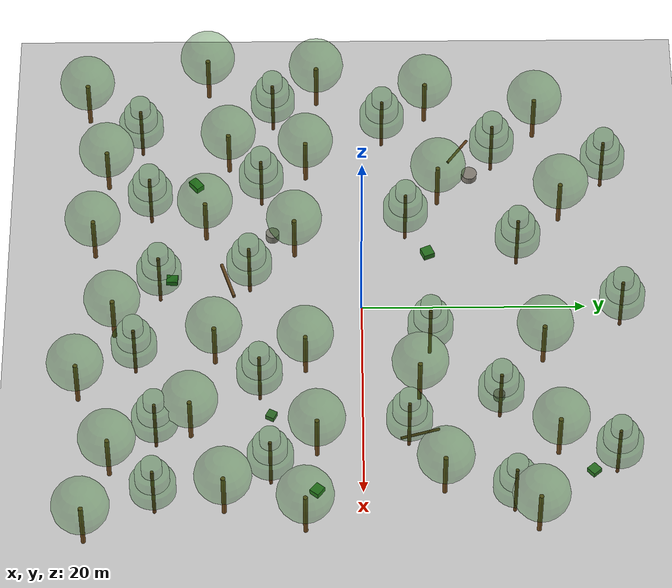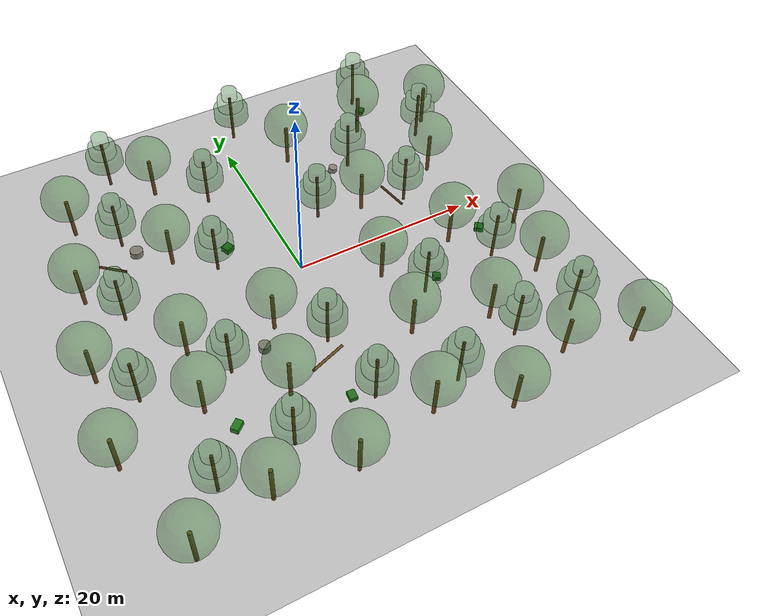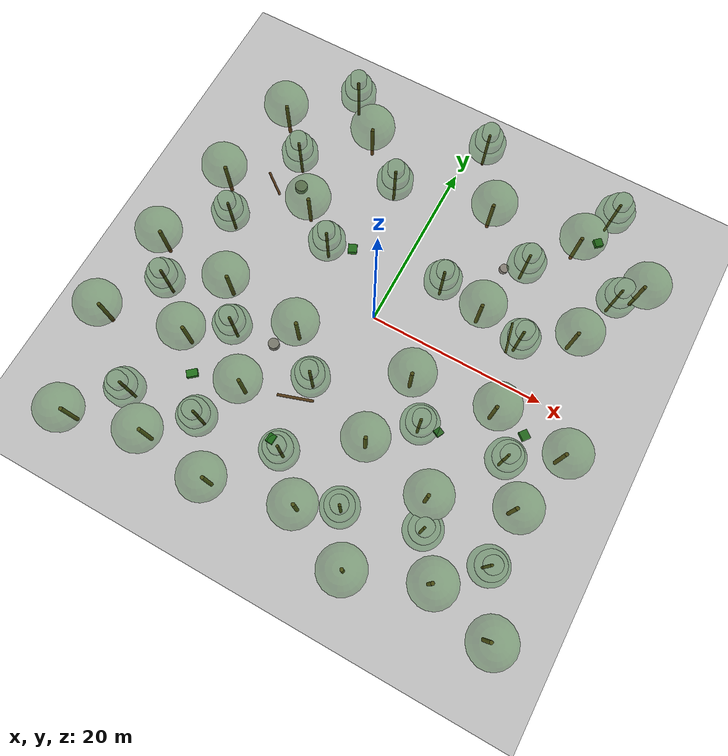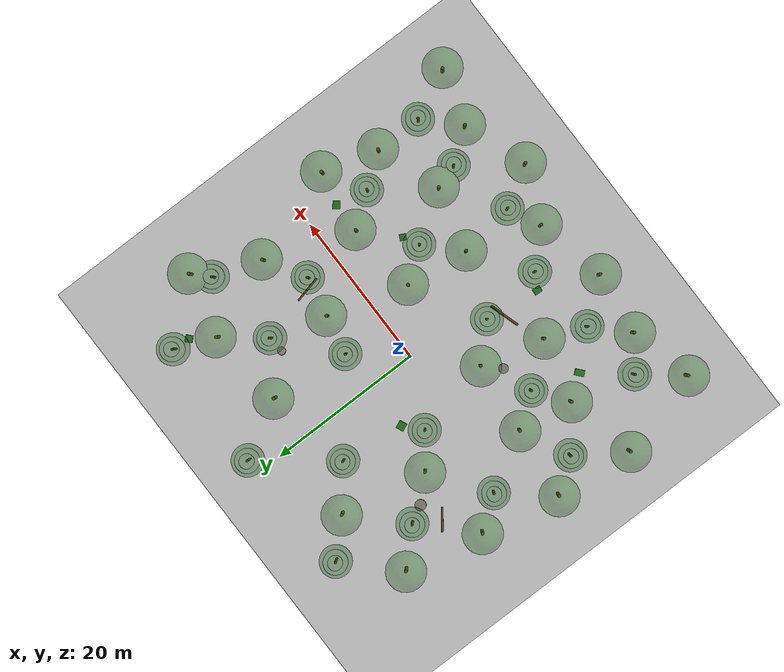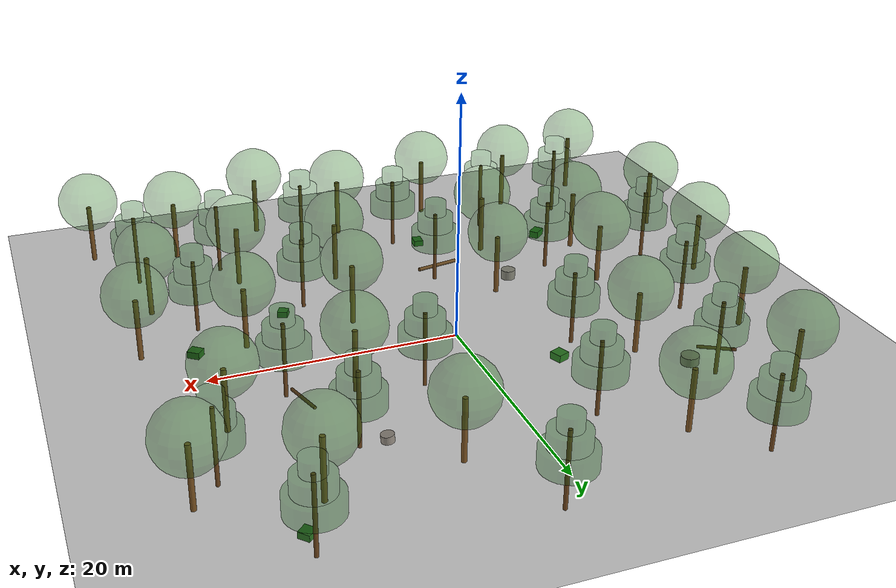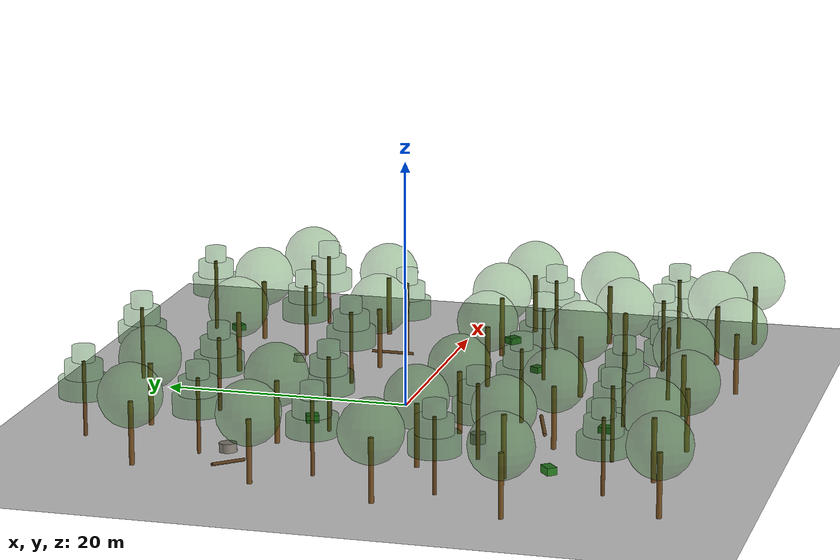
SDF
<?xml version="1.0" ?>
<!--
  MAK4 森林仿真世界 (第十一次更新)
  用于 3D LiDAR 建图 + 路径规划测试
  区域: 约 60m x 60m 的中等密度森林
  ★ 50棵树 (28橡树+22松树), 间距4-7m
  ★ 树冠60%透明, 俯视可看到无人机
  ★ 中央4m空地作为起飞区
-->
<sdf version="1.6">
  <world name="mak4_forest">

    <!-- ===== 光照 ===== -->
    <include>
      <uri>model://sun</uri>
    </include>

    <!-- ===== 地面 ===== -->
    <include>
      <uri>model://ground_plane</uri>
    </include>

    <!-- ===== 物理引擎（PX4 SITL 标准配置）===== -->
    <physics name='default_physics' default='0' type='ode'>
      <gravity>0 0 -9.8066</gravity>
      <ode>
        <solver>
          <type>quick</type>
          <iters>10</iters>
          <sor>1.3</sor>
          <use_dynamic_moi_rescaling>0</use_dynamic_moi_rescaling>
        </solver>
        <constraints>
          <cfm>0</cfm>
          <erp>0.2</erp>
          <contact_max_correcting_vel>100</contact_max_correcting_vel>
          <contact_surface_layer>0.001</contact_surface_layer>
        </constraints>
      </ode>
      <max_step_size>0.004</max_step_size>
      <real_time_factor>1</real_time_factor>
      <real_time_update_rate>250</real_time_update_rate>
      <magnetic_field>6.0e-06 2.3e-05 -4.2e-05</magnetic_field>
    </physics>

    <scene>
      <ambient>0.4 0.4 0.4 1</ambient>
      <background>0.7 0.85 1.0 1</background>
      <shadows>true</shadows>
    </scene>

    <!-- ========= 橡树 28棵 (间距4-7m, 中央4m空地) ========= -->
    <include><name>oak_1</name><uri>model://oak_tree_local</uri><pose>-22 -25 0 0 0 0.3</pose></include>
    <include><name>oak_2</name><uri>model://oak_tree_local</uri><pose>-14 -23 0 0 0 1.2</pose></include>
    <include><name>oak_3</name><uri>model://oak_tree_local</uri><pose>-6 -24 0 0 0 2.1</pose></include>
    <include><name>oak_4</name><uri>model://oak_tree_local</uri><pose>3 -22 0 0 0 0.8</pose></include>
    <include><name>oak_5</name><uri>model://oak_tree_local</uri><pose>10 -25 0 0 0 1.9</pose></include>
    <include><name>oak_6</name><uri>model://oak_tree_local</uri><pose>18 -22 0 0 0 0.5</pose></include>
    <include><name>oak_7</name><uri>model://oak_tree_local</uri><pose>25 -24 0 0 0 2.4</pose></include>
    <include><name>oak_8</name><uri>model://oak_tree_local</uri><pose>-25 -14 0 0 0 1.7</pose></include>
    <include><name>oak_9</name><uri>model://oak_tree_local</uri><pose>-16 -12 0 0 0 0.1</pose></include>
    <include><name>oak_10</name><uri>model://oak_tree_local</uri><pose>-8 -14 0 0 0 3.0</pose></include>
    <include><name>oak_11</name><uri>model://oak_tree_local</uri><pose>6 -13 0 0 0 0.9</pose></include>
    <include><name>oak_12</name><uri>model://oak_tree_local</uri><pose>14 -15 0 0 0 2.7</pose></include>
    <include><name>oak_13</name><uri>model://oak_tree_local</uri><pose>22 -12 0 0 0 1.5</pose></include>
    <include><name>oak_14</name><uri>model://oak_tree_local</uri><pose>-24 -4 0 0 0 0.6</pose></include>
    <include><name>oak_15</name><uri>model://oak_tree_local</uri><pose>-15 -5 0 0 0 1.1</pose></include>
    <include><name>oak_16</name><uri>model://oak_tree_local</uri><pose>-6 -6 0 0 0 0.4</pose></include>
    <include><name>oak_17</name><uri>model://oak_tree_local</uri><pose>7 -5 0 0 0 1.8</pose></include>
    <include><name>oak_18</name><uri>model://oak_tree_local</uri><pose>16 -4 0 0 0 2.9</pose></include>
    <include><name>oak_19</name><uri>model://oak_tree_local</uri><pose>24 -5 0 0 0 0.7</pose></include>
    <include><name>oak_20</name><uri>model://oak_tree_local</uri><pose>-22 6 0 0 0 2.0</pose></include>
    <include><name>oak_21</name><uri>model://oak_tree_local</uri><pose>-12 7 0 0 0 1.3</pose></include>
    <include><name>oak_22</name><uri>model://oak_tree_local</uri><pose>10 5 0 0 0 0.2</pose></include>
    <include><name>oak_23</name><uri>model://oak_tree_local</uri><pose>20 7 0 0 0 2.5</pose></include>
    <include><name>oak_24</name><uri>model://oak_tree_local</uri><pose>-20 16 0 0 0 1.6</pose></include>
    <include><name>oak_25</name><uri>model://oak_tree_local</uri><pose>-10 18 0 0 0 0.8</pose></include>
    <include><name>oak_26</name><uri>model://oak_tree_local</uri><pose>6 16 0 0 0 2.2</pose></include>
    <include><name>oak_27</name><uri>model://oak_tree_local</uri><pose>16 17 0 0 0 1.4</pose></include>
    <include><name>oak_28</name><uri>model://oak_tree_local</uri><pose>24 15 0 0 0 0.3</pose></include>

    <!-- ========= 松树 22棵 (与橡树交错分布) ========= -->
    <include><name>pine_1</name><uri>model://pine_tree_local</uri><pose>-18 -20 0 0 0 0.8</pose></include>
    <include><name>pine_2</name><uri>model://pine_tree_local</uri><pose>-10 -19 0 0 0 1.5</pose></include>
    <include><name>pine_3</name><uri>model://pine_tree_local</uri><pose>-1 -18 0 0 0 2.3</pose></include>
    <include><name>pine_4</name><uri>model://pine_tree_local</uri><pose>7 -20 0 0 0 0.4</pose></include>
    <include><name>pine_5</name><uri>model://pine_tree_local</uri><pose>15 -18 0 0 0 1.9</pose></include>
    <include><name>pine_6</name><uri>model://pine_tree_local</uri><pose>22 -18 0 0 0 2.8</pose></include>
    <include><name>pine_7</name><uri>model://pine_tree_local</uri><pose>-21 -8 0 0 0 0.6</pose></include>
    <include><name>pine_8</name><uri>model://pine_tree_local</uri><pose>-12 -9 0 0 0 1.2</pose></include>
    <include><name>pine_9</name><uri>model://pine_tree_local</uri><pose>-2 -10 0 0 0 2.1</pose></include>
    <include><name>pine_10</name><uri>model://pine_tree_local</uri><pose>10 -9 0 0 0 0.3</pose></include>
    <include><name>pine_11</name><uri>model://pine_tree_local</uri><pose>19 -8 0 0 0 1.7</pose></include>
    <include><name>pine_12</name><uri>model://pine_tree_local</uri><pose>-19 2 0 0 0 2.5</pose></include>
    <include><name>pine_13</name><uri>model://pine_tree_local</uri><pose>-8 4 0 0 0 0.9</pose></include>
    <include><name>pine_14</name><uri>model://pine_tree_local</uri><pose>5 6 0 0 0 1.6</pose></include>
    <include><name>pine_15</name><uri>model://pine_tree_local</uri><pose>15 4 0 0 0 2.7</pose></include>
    <include><name>pine_16</name><uri>model://pine_tree_local</uri><pose>-16 12 0 0 0 0.5</pose></include>
    <include><name>pine_17</name><uri>model://pine_tree_local</uri><pose>-5 14 0 0 0 1.8</pose></include>
    <include><name>pine_18</name><uri>model://pine_tree_local</uri><pose>12 12 0 0 0 2.4</pose></include>
    <include><name>pine_19</name><uri>model://pine_tree_local</uri><pose>22 13 0 0 0 0.7</pose></include>
    <include><name>pine_20</name><uri>model://pine_tree_local</uri><pose>-14 22 0 0 0 1.1</pose></include>
    <include><name>pine_21</name><uri>model://pine_tree_local</uri><pose>2 23 0 0 0 2.6</pose></include>
    <include><name>pine_22</name><uri>model://pine_tree_local</uri><pose>18 22 0 0 0 0.4</pose></include>

    <!-- ========= 岩石 ========= -->
    <model name="rock_1"><static>true</static><pose>-8 -8 0.4 0 0 0.5</pose><link name="link"><collision name="c"><geometry><cylinder><radius>0.6</radius><length>0.8</length></cylinder></geometry></collision><visual name="v"><geometry><cylinder><radius>0.6</radius><length>0.8</length></cylinder></geometry><material><ambient>0.4 0.4 0.35 1</ambient><diffuse>0.5 0.5 0.45 1</diffuse></material></visual></link></model>
    <model name="rock_2"><static>true</static><pose>10 12 0.3 0.1 0 1.2</pose><link name="link"><collision name="c"><geometry><cylinder><radius>0.5</radius><length>0.6</length></cylinder></geometry></collision><visual name="v"><geometry><cylinder><radius>0.5</radius><length>0.6</length></cylinder></geometry><material><ambient>0.45 0.42 0.38 1</ambient><diffuse>0.55 0.52 0.48 1</diffuse></material></visual></link></model>
    <model name="rock_3"><static>true</static><pose>-15 10 0.35 0.05 0 2.0</pose><link name="link"><collision name="c"><geometry><cylinder><radius>0.7</radius><length>0.7</length></cylinder></geometry></collision><visual name="v"><geometry><cylinder><radius>0.7</radius><length>0.7</length></cylinder></geometry><material><ambient>0.42 0.40 0.36 1</ambient><diffuse>0.52 0.50 0.46 1</diffuse></material></visual></link></model>

    <!-- ========= 灌木 ========= -->
    <model name="bush_1"><static>true</static><pose>-6 6 0.3 0 0 0.4</pose><link name="link"><collision name="c"><geometry><box><size>1.0 1.0 0.6</size></box></geometry></collision><visual name="v"><geometry><box><size>1.0 1.0 0.6</size></box></geometry><material><ambient>0.1 0.35 0.08 1</ambient><diffuse>0.15 0.45 0.12 1</diffuse></material></visual></link></model>
    <model name="bush_2"><static>true</static><pose>12 -8 0.25 0 0 1.1</pose><link name="link"><collision name="c"><geometry><box><size>0.8 0.8 0.5</size></box></geometry></collision><visual name="v"><geometry><box><size>0.8 0.8 0.5</size></box></geometry><material><ambient>0.12 0.32 0.1 1</ambient><diffuse>0.18 0.42 0.15 1</diffuse></material></visual></link></model>
    <model name="bush_3"><static>true</static><pose>-14 -15 0.3 0 0 0.7</pose><link name="link"><collision name="c"><geometry><box><size>1.2 0.8 0.6</size></box></geometry></collision><visual name="v"><geometry><box><size>1.2 0.8 0.6</size></box></geometry><material><ambient>0.1 0.38 0.08 1</ambient><diffuse>0.15 0.48 0.12 1</diffuse></material></visual></link></model>
    <model name="bush_4"><static>true</static><pose>18 20 0.25 0 0 2.3</pose><link name="link"><collision name="c"><geometry><box><size>0.9 0.9 0.5</size></box></geometry></collision><visual name="v"><geometry><box><size>0.9 0.9 0.5</size></box></geometry><material><ambient>0.11 0.34 0.09 1</ambient><diffuse>0.16 0.44 0.13 1</diffuse></material></visual></link></model>
    <model name="bush_5"><static>true</static><pose>-3 -17 0.3 0 0 1.5</pose><link name="link"><collision name="c"><geometry><box><size>1.0 0.8 0.5</size></box></geometry></collision><visual name="v"><geometry><box><size>1.0 0.8 0.5</size></box></geometry><material><ambient>0.1 0.36 0.09 1</ambient><diffuse>0.15 0.46 0.13 1</diffuse></material></visual></link></model>
    <model name="bush_6"><static>true</static><pose>20 -4 0.25 0 0 0.9</pose><link name="link"><collision name="c"><geometry><box><size>0.9 1.0 0.55</size></box></geometry></collision><visual name="v"><geometry><box><size>0.9 1.0 0.55</size></box></geometry><material><ambient>0.1 0.33 0.08 1</ambient><diffuse>0.15 0.43 0.12 1</diffuse></material></visual></link></model>

    <!-- ========= 倒木 ========= -->
    <model name="fallen_log_1"><static>true</static><pose>-3 -12 0.2 0 1.5 0.3</pose><link name="link"><collision name="c"><geometry><cylinder><radius>0.15</radius><length>4.0</length></cylinder></geometry></collision><visual name="v"><geometry><cylinder><radius>0.15</radius><length>4.0</length></cylinder></geometry><material><ambient>0.3 0.2 0.08 1</ambient><diffuse>0.4 0.28 0.12 1</diffuse></material></visual></link></model>
    <model name="fallen_log_2"><static>true</static><pose>14 5 0.18 0 1.5 1.8</pose><link name="link"><collision name="c"><geometry><cylinder><radius>0.12</radius><length>3.5</length></cylinder></geometry></collision><visual name="v"><geometry><cylinder><radius>0.12</radius><length>3.5</length></cylinder></geometry><material><ambient>0.28 0.18 0.07 1</ambient><diffuse>0.38 0.25 0.10 1</diffuse></material></visual></link></model>
    <model name="fallen_log_3"><static>true</static><pose>-18 9 0.16 0 1.5 2.5</pose><link name="link"><collision name="c"><geometry><cylinder><radius>0.13</radius><length>3.0</length></cylinder></geometry></collision><visual name="v"><geometry><cylinder><radius>0.13</radius><length>3.0</length></cylinder></geometry><material><ambient>0.25 0.16 0.06 1</ambient><diffuse>0.35 0.22 0.09 1</diffuse></material></visual></link></model>

  </world>
</sdf>

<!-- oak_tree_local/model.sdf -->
<sdf version="1.6">
  <model name="oak_tree_local">
    <static>true</static>
    <link name="trunk">
      <!-- 树干 -->
      <collision name="trunk_collision">
        <pose>0 0 2.5 0 0 0</pose>
        <geometry>
          <cylinder><radius>0.2</radius><length>5.0</length></cylinder>
        </geometry>
      </collision>
      <visual name="trunk_visual">
        <pose>0 0 2.5 0 0 0</pose>
        <geometry>
          <cylinder><radius>0.2</radius><length>5.0</length></cylinder>
        </geometry>
        <material>
          <ambient>0.35 0.22 0.08 1</ambient>
          <diffuse>0.45 0.3 0.12 1</diffuse>
        </material>
      </visual>
      <!-- 树冠(球体) -->
      <collision name="canopy_collision">
        <pose>0 0 5.5 0 0 0</pose>
        <geometry>
          <sphere><radius>2.5</radius></sphere>
        </geometry>
      </collision>
      <visual name="canopy_visual">
        <pose>0 0 5.5 0 0 0</pose>
        <geometry>
          <sphere><radius>2.5</radius></sphere>
        </geometry>
        <material>
          <ambient>0.08 0.32 0.05 0.35</ambient>
          <diffuse>0.12 0.45 0.08 0.35</diffuse>
        </material>
        <transparency>0.6</transparency>
      </visual>
    </link>
  </model>
</sdf>

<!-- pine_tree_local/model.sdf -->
<sdf version="1.6">
  <model name="pine_tree_local">
    <static>true</static>
    <link name="trunk">
      <!-- 松树干（更细更高） -->
      <collision name="trunk_collision">
        <pose>0 0 3.0 0 0 0</pose>
        <geometry>
          <cylinder><radius>0.15</radius><length>6.0</length></cylinder>
        </geometry>
      </collision>
      <visual name="trunk_visual">
        <pose>0 0 3.0 0 0 0</pose>
        <geometry>
          <cylinder><radius>0.15</radius><length>6.0</length></cylinder>
        </geometry>
        <material>
          <ambient>0.3 0.18 0.06 1</ambient>
          <diffuse>0.4 0.25 0.1 1</diffuse>
        </material>
      </visual>
      <!-- 松树冠(锥形, 用圆锥近似) -->
      <collision name="canopy_collision">
        <pose>0 0 5.5 0 0 0</pose>
        <geometry>
          <cylinder><radius>1.8</radius><length>5.0</length></cylinder>
        </geometry>
      </collision>
      <visual name="canopy_lower">
        <pose>0 0 4.0 0 0 0</pose>
        <geometry>
          <cylinder><radius>2.0</radius><length>1.5</length></cylinder>
        </geometry>
        <material>
          <ambient>0.04 0.28 0.03 0.35</ambient>
          <diffuse>0.06 0.38 0.05 0.35</diffuse>
        </material>
        <transparency>0.6</transparency>
      </visual>
      <visual name="canopy_mid">
        <pose>0 0 5.3 0 0 0</pose>
        <geometry>
          <cylinder><radius>1.5</radius><length>1.5</length></cylinder>
        </geometry>
        <material>
          <ambient>0.05 0.3 0.04 0.35</ambient>
          <diffuse>0.07 0.4 0.06 0.35</diffuse>
        </material>
        <transparency>0.6</transparency>
      </visual>
      <visual name="canopy_top">
        <pose>0 0 6.5 0 0 0</pose>
        <geometry>
          <cylinder><radius>0.9</radius><length>1.5</length></cylinder>
        </geometry>
        <material>
          <ambient>0.06 0.32 0.05 0.35</ambient>
          <diffuse>0.08 0.42 0.07 0.35</diffuse>
        </material>
        <transparency>0.6</transparency>
      </visual>
    </link>
  </model>
</sdf>
